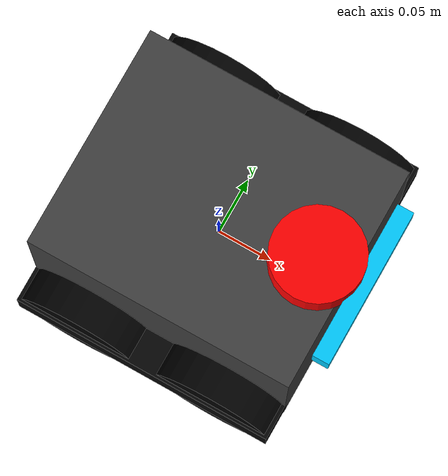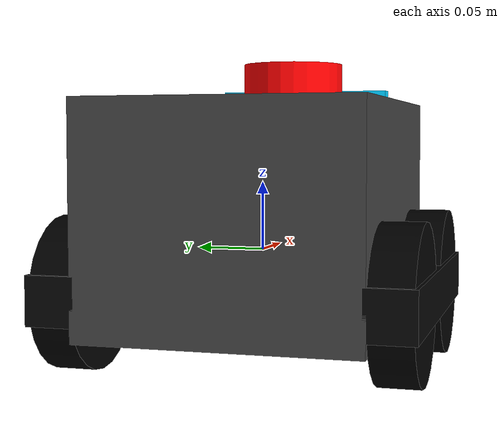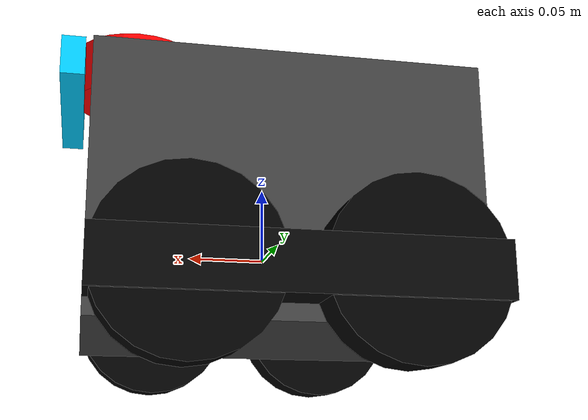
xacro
<?xml version="1.0"?>

<robot name="spazzino" xmlns:xacro="http://www.ros.org/wiki/xacro">

    <!-- Robot Parameters -->

    <xacro:property name="PI" value="3.14159265"/>

    <xacro:property name="body_length" value="0.24"/>
    <xacro:property name="body_width" value="0.2"/>
    <xacro:property name="body_height" value="0.165"/>
    <xacro:property name="body_density" value="7850.0"/>

    <xacro:property name="body_mass" value="${body_density * body_length * body_height * body_width}"/>
    <xacro:property name="body_inertia_x" value="${1.0/12.0 * body_mass * (body_height*body_height + body_width*body_width)}"/>
    <xacro:property name="body_inertia_y" value="${1.0/12.0 * body_mass * (body_length*body_length + body_height*body_height)}"/>
    <xacro:property name="body_inertia_z" value="${1.0/12.0 * body_mass * (body_length*body_length + body_width*body_width)}"/>

    <xacro:property name="wheel_radius" value="0.055"/>
    <xacro:property name="wheel_width" value="0.03"/>
    <xacro:property name="wheel_separation" value="${body_width + wheel_width}"/>
    <xacro:property name="wheel_offset" value="${body_length/2 - wheel_radius}"/>
    <xacro:property name="wheel_density" value="900"/>

    <xacro:property name="wheel_mass" value="${wheel_density * PI * wheel_radius * wheel_radius * wheel_width}"/>
    <xacro:property name="wheel_inertia_x" value="${1.0/12.0 * wheel_mass * (3*wheel_radius*wheel_radius + wheel_width*wheel_width)}"/>
    <xacro:property name="wheel_inertia_y" value="${1.0/12.0 * wheel_mass * (3*wheel_radius*wheel_radius + wheel_width*wheel_width)}"/>
    <xacro:property name="wheel_inertia_z" value="${1.0/2.0 * wheel_mass * wheel_radius * wheel_radius}"/>

    <xacro:property name="track_length" value="${body_length}"/>
    <xacro:property name="track_width" value="0.035"/>
    <xacro:property name="track_height" value="0.035"/>

    <xacro:property name="laser_radius" value="0.04"/>
    <xacro:property name="laser_height" value="0.035"/>

    <xacro:property name="max_linear_acceleration" value="10"/>

    <!-- Materials -->

    <material name="body_material">
        <color rgba="0.25 0.25 0.25 1.0"/>
    </material>

    <material name="wheel_material">
        <color rgba="0.0 0.0 0.0 1.0"/>
    </material>

    <material name="track_material">
        <color rgba="0.02 0.02 0.02 1.0"/>
    </material>

    <material name="laser_material">
        <color rgba="1.0 0.0 0.0 1.0"/>
    </material>

    <material name="front_marker_material">
        <color rgba="0.0 0.8 1.0 1.0"/>
    </material>

    <!-- BASE LINK -->
    <!-- Frame principale ROS:
         X rosso = avanti reale
         Y verde = sinistra
         Z blu = alto
    ========================================================== -->

    <link name="base_link"/>

    <!-- BODY LINK -->
    <!-- Corpo del robot.
         NON viene più ruotato di 180 gradi.
    ========================================================== -->

    <link name="body_link">
        <visual>
            <origin xyz="0.0 0.0 0.027" rpy="0.0 0.0 0.0"/>
            <geometry>
                <box size="${body_length} ${body_width} ${body_height}"/>
            </geometry>
            <material name="body_material"/>
        </visual>

        <collision>
            <origin xyz="0.0 0.0 0.027" rpy="0.0 0.0 0.0"/>
            <geometry>
                <box size="${body_length} ${body_width} ${body_height}"/>
            </geometry>
        </collision>

        <inertial>
            <mass value="10"/>
            <inertia
                ixx="${body_inertia_x}" ixy="0.0" ixz="0.0"
                iyy="${body_inertia_y}" iyz="0.0"
                izz="${body_inertia_z}"/>
            <origin xyz="0 0 0.027" rpy="0 0 0"/>
        </inertial>
    </link>

    <!-- BASE TO BODY JOINT -->
    <!-- Correzione importante:
         prima era rpy="0 0 ${PI}", e quello girava tutto di 180°.
         Ora è zero.
    ========================================================== -->

    <joint name="base_to_body_joint" type="fixed">
        <parent link="base_link"/>
        <child link="body_link"/>
        <origin xyz="0 0 0" rpy="0 0 0"/>
    </joint>

    <!-- BASE FOOTPRINT -->
    <!-- Frame a terra collegato a base_link.
    ========================================================== -->

    <link name="base_footprint"/>

    <joint name="base_footprint_joint" type="fixed">
        <parent link="base_link"/>
        <child link="base_footprint"/>
        <origin xyz="0 0 0" rpy="0 0 0"/>
    </joint>

    <!-- FRONT MARKER -->
    <!-- Marker visivo sul davanti reale, cioè lato +X.
    ========================================================== -->

    <link name="front_marker_link">
        <visual>
            <origin xyz="0 0 0" rpy="0 0 0"/>
            <geometry>
                <box size="0.015 0.14 0.025"/>
            </geometry>
            <material name="front_marker_material"/>
        </visual>
    </link>

    <joint name="front_marker_joint" type="fixed">
        <parent link="body_link"/>
        <child link="front_marker_link"/>
        <origin xyz="${body_length/2 + 0.012} 0 0.11" rpy="0 0 0"/>
    </joint>

    <!-- LEFT DRIVE WHEEL -->
    <!-- Ruota motrice sinistra DAVANTI.
         X positivo = davanti.
         Y positivo = sinistra.
    ========================================================== -->

    <link name="left_wheel_link">
        <visual>
            <origin xyz="0.0 0.0 0.0" rpy="1.570795 0.0 0.0"/>
            <geometry>
                <cylinder radius="${wheel_radius}" length="${wheel_width}"/>
            </geometry>
            <material name="wheel_material"/>
        </visual>

        <collision>
            <origin xyz="0.0 0.0 0.0" rpy="1.570795 0.0 0.0"/>
            <geometry>
                <cylinder radius="${wheel_radius}" length="${wheel_width}"/>
            </geometry>
        </collision>

        <inertial>
            <mass value="${wheel_mass}"/>
            <inertia
                ixx="${wheel_inertia_x}" ixy="0.0" ixz="0.0"
                iyy="${wheel_inertia_y}" iyz="0.0"
                izz="${wheel_inertia_z}"/>
            <origin xyz="0.0 0.0 0.0" rpy="1.570795 0.0 0.0"/>
        </inertial>
    </link>

    <joint name="left_wheel_joint" type="continuous">
        <parent link="body_link"/>
        <child link="left_wheel_link"/>
        <origin xyz="${wheel_offset} ${wheel_separation/2} -${wheel_radius/2}" rpy="0 0 0"/>
        <axis xyz="0 1 0"/>
        <limit effort="100" velocity="10.0"/>
        <dynamics damping="0.1" friction="0.1"/>
    </joint>

    <!-- RIGHT DRIVE WHEEL -->
    <!-- Ruota motrice destra DAVANTI.
         X positivo = davanti.
         Y negativo = destra.
    ========================================================== -->

    <link name="right_wheel_link">
        <visual>
            <origin xyz="0.0 0.0 0.0" rpy="1.570795 0.0 0.0"/>
            <geometry>
                <cylinder radius="${wheel_radius}" length="${wheel_width}"/>
            </geometry>
            <material name="wheel_material"/>
        </visual>

        <collision>
            <origin xyz="0.0 0.0 0.0" rpy="1.570795 0.0 0.0"/>
            <geometry>
                <cylinder radius="${wheel_radius}" length="${wheel_width}"/>
            </geometry>
        </collision>

        <inertial>
            <mass value="${wheel_mass}"/>
            <inertia
                ixx="${wheel_inertia_x}" ixy="0.0" ixz="0.0"
                iyy="${wheel_inertia_y}" iyz="0.0"
                izz="${wheel_inertia_z}"/>
            <origin xyz="0.0 0.0 0.0" rpy="1.570795 0.0 0.0"/>
        </inertial>
    </link>

    <joint name="right_wheel_joint" type="continuous">
        <parent link="body_link"/>
        <child link="right_wheel_link"/>
        <origin xyz="${wheel_offset} ${-wheel_separation/2} -${wheel_radius/2}" rpy="0 0 0"/>
        <axis xyz="0 1 0"/>
        <limit effort="100" velocity="10.0"/>
        <dynamics damping="0.1" friction="0.1"/>
    </joint>

    <!-- REAR LEFT WHEEL -->
    <!-- Ruota posteriore sinistra, fissa/visiva.
    ========================================================== -->

    <link name="rear_left_wheel_link">
        <visual>
            <origin xyz="0.0 0.0 0.0" rpy="1.570795 0.0 0.0"/>
            <geometry>
                <cylinder radius="${wheel_radius}" length="${wheel_width}"/>
            </geometry>
            <material name="wheel_material"/>
        </visual>

        <collision>
            <origin xyz="0.0 0.0 0.0" rpy="1.570795 0.0 0.0"/>
            <geometry>
                <cylinder radius="${wheel_radius}" length="${wheel_width}"/>
            </geometry>
        </collision>

        <inertial>
            <mass value="${wheel_mass}"/>
            <inertia
                ixx="${wheel_inertia_x}" ixy="0.0" ixz="0.0"
                iyy="${wheel_inertia_y}" iyz="0.0"
                izz="${wheel_inertia_z}"/>
            <origin xyz="0.0 0.0 0.0" rpy="1.570795 0.0 0.0"/>
        </inertial>
    </link>

    <joint name="rear_left_wheel_joint" type="fixed">
        <parent link="body_link"/>
        <child link="rear_left_wheel_link"/>
        <origin xyz="-${wheel_offset} ${wheel_separation/2} -${wheel_radius/2}" rpy="0 0 0"/>
    </joint>

    <!-- REAR RIGHT WHEEL -->
    <!-- Ruota posteriore destra, fissa/visiva.
    ========================================================== -->

    <link name="rear_right_wheel_link">
        <visual>
            <origin xyz="0.0 0.0 0.0" rpy="1.570795 0.0 0.0"/>
            <geometry>
                <cylinder radius="${wheel_radius}" length="${wheel_width}"/>
            </geometry>
            <material name="wheel_material"/>
        </visual>

        <collision>
            <origin xyz="0.0 0.0 0.0" rpy="1.570795 0.0 0.0"/>
            <geometry>
                <cylinder radius="${wheel_radius}" length="${wheel_width}"/>
            </geometry>
        </collision>

        <inertial>
            <mass value="${wheel_mass}"/>
            <inertia
                ixx="${wheel_inertia_x}" ixy="0.0" ixz="0.0"
                iyy="${wheel_inertia_y}" iyz="0.0"
                izz="${wheel_inertia_z}"/>
            <origin xyz="0.0 0.0 0.0" rpy="1.570795 0.0 0.0"/>
        </inertial>
    </link>

    <joint name="rear_right_wheel_joint" type="fixed">
        <parent link="body_link"/>
        <child link="rear_right_wheel_link"/>
        <origin xyz="-${wheel_offset} ${-wheel_separation/2} -${wheel_radius/2}" rpy="0 0 0"/>
    </joint>

    <!-- LEFT TRACK VISUAL -->
    <!-- Cingolo sinistro visivo.
    ========================================================== -->

    <link name="left_track_link">
        <visual>
            <origin xyz="0 0 0" rpy="0 0 0"/>
            <geometry>
                <box size="${track_length} ${track_width} ${track_height}"/>
            </geometry>
            <material name="track_material"/>
        </visual>

        <collision>
            <origin xyz="0 0 0" rpy="0 0 0"/>
            <geometry>
                <box size="${track_length} ${track_width} ${track_height}"/>
            </geometry>
        </collision>

        <inertial>
            <mass value="0.5"/>
            <inertia
                ixx="0.001" ixy="0.0" ixz="0.0"
                iyy="0.001" iyz="0.0"
                izz="0.001"/>
            <origin xyz="0 0 0" rpy="0 0 0"/>
        </inertial>
    </link>

    <joint name="left_track_joint" type="fixed">
        <parent link="body_link"/>
        <child link="left_track_link"/>
        <origin xyz="0 ${wheel_separation/2} -${wheel_radius/2}" rpy="0 0 0"/>
    </joint>

    <!-- RIGHT TRACK VISUAL -->
    <!-- Cingolo destro visivo.
    ========================================================== -->

    <link name="right_track_link">
        <visual>
            <origin xyz="0 0 0" rpy="0 0 0"/>
            <geometry>
                <box size="${track_length} ${track_width} ${track_height}"/>
            </geometry>
            <material name="track_material"/>
        </visual>

        <collision>
            <origin xyz="0 0 0" rpy="0 0 0"/>
            <geometry>
                <box size="${track_length} ${track_width} ${track_height}"/>
            </geometry>
        </collision>

        <inertial>
            <mass value="0.5"/>
            <inertia
                ixx="0.001" ixy="0.0" ixz="0.0"
                iyy="0.001" iyz="0.0"
                izz="0.001"/>
            <origin xyz="0 0 0" rpy="0 0 0"/>
        </inertial>
    </link>

    <joint name="right_track_joint" type="fixed">
        <parent link="body_link"/>
        <child link="right_track_link"/>
        <origin xyz="0 ${-wheel_separation/2} -${wheel_radius/2}" rpy="0 0 0"/>
    </joint>

    <!-- LIDAR -->
    <!-- Lidar davanti: X positivo.
         Se il LaserScan risulta girato di 180°, ruota SOLO questo joint:
         rpy="0 0 ${PI}"
    ========================================================== -->

    <link name="laser_frame">
        <visual>
            <origin xyz="0.0 0.0 0.0" rpy="0.0 0.0 0.0"/>
            <geometry>
                <cylinder radius="${laser_radius}" length="${laser_height}"/>
            </geometry>
            <material name="laser_material"/>
        </visual>

        <collision>
            <origin xyz="0.0 0.0 0.0" rpy="0.0 0.0 0.0"/>
            <geometry>
                <cylinder radius="${laser_radius}" length="${laser_height}"/>
            </geometry>
        </collision>

        <inertial>
            <mass value="0.2"/>
            <inertia
                ixx="0.001" ixy="0.0" ixz="0.0"
                iyy="0.001" iyz="0.0"
                izz="0.001"/>
            <origin xyz="0.0 0.0 0.0" rpy="0.0 0.0 0.0"/>
        </inertial>
    </link>

    <joint name="laser_joint" type="fixed">
        <parent link="body_link"/>
        <child link="laser_frame"/>
        <origin xyz="${body_length/2 - 0.03} 0 0.125" rpy="0 0 0"/>
    </joint>

</robot>
